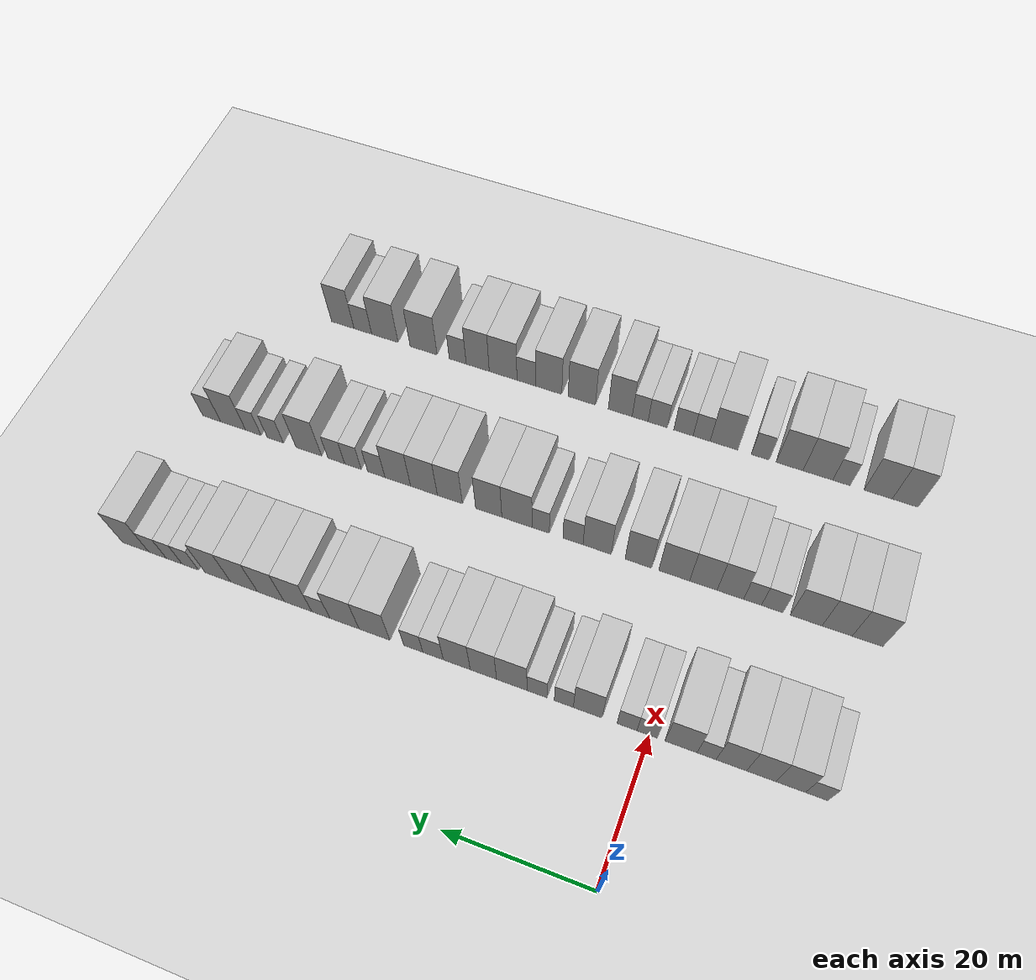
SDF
<sdf version="1.6">
 <world name="default">
  <include><name>ground_plane_1</name><uri>model://HANNAS_ground_plane</uri></include>
  <model name="building_91">
   <static>1</static>
   <pose>25.0000 -21.5674 0 0.000000 0.000000 0.000000</pose>
   <link name="link">
    <pose>0 0 3.00 0 0 0</pose>
    <collision name="collision"><geometry><box><size>10.0000 2.8144 6.0000</size></box></geometry></collision>
    <visual name="visual">
     <cast_shadows>0</cast_shadows>
     <geometry><box><size>10.0000 2.8144 6.0000</size></box></geometry>
     <material>
      <script>
       <uri>model://HANNAS_wall/materials/scripts</uri>
       <uri>model://HANNAS_wall/materials/textures</uri>
       <name>vrc/HANNAS_wall</name>
      </script>
     </material>
    </visual>
   </link>
  </model>
  <model name="building_92">
   <static>1</static>
   <pose>25.0000 -18.2721 0 0.000000 0.000000 0.000000</pose>
   <link name="link">
    <pose>0 0 4.50 0 0 0</pose>
    <collision name="collision"><geometry><box><size>10.0000 3.7761 9.0000</size></box></geometry></collision>
    <visual name="visual">
     <cast_shadows>0</cast_shadows>
     <geometry><box><size>10.0000 3.7761 9.0000</size></box></geometry>
     <material>
      <script>
       <uri>model://HANNAS_wall/materials/scripts</uri>
       <uri>model://HANNAS_wall/materials/textures</uri>
       <name>vrc/HANNAS_wall</name>
      </script>
     </material>
    </visual>
   </link>
  </model>
  <model name="building_93">
   <static>1</static>
   <pose>25.0000 -14.5217 0 0.000000 0.000000 0.000000</pose>
   <link name="link">
    <pose>0 0 4.50 0 0 0</pose>
    <collision name="collision"><geometry><box><size>10.0000 3.7248 9.0000</size></box></geometry></collision>
    <visual name="visual">
     <cast_shadows>0</cast_shadows>
     <geometry><box><size>10.0000 3.7248 9.0000</size></box></geometry>
     <material>
      <script>
       <uri>model://HANNAS_wall/materials/scripts</uri>
       <uri>model://HANNAS_wall/materials/textures</uri>
       <name>vrc/HANNAS_wall</name>
      </script>
     </material>
    </visual>
   </link>
  </model>
  <model name="building_94">
   <static>1</static>
   <pose>25.0000 -10.6902 0 0.000000 0.000000 0.000000</pose>
   <link name="link">
    <pose>0 0 4.50 0 0 0</pose>
    <collision name="collision"><geometry><box><size>10.0000 3.9383 9.0000</size></box></geometry></collision>
    <visual name="visual">
     <cast_shadows>0</cast_shadows>
     <geometry><box><size>10.0000 3.9383 9.0000</size></box></geometry>
     <material>
      <script>
       <uri>model://HANNAS_wall/materials/scripts</uri>
       <uri>model://HANNAS_wall/materials/textures</uri>
       <name>vrc/HANNAS_wall</name>
      </script>
     </material>
    </visual>
   </link>
  </model>
  <model name="building_95">
   <static>1</static>
   <pose>25.0000 -7.4806 0 0.000000 0.000000 0.000000</pose>
   <link name="link">
    <pose>0 0 3.00 0 0 0</pose>
    <collision name="collision"><geometry><box><size>10.0000 2.4808 6.0000</size></box></geometry></collision>
    <visual name="visual">
     <cast_shadows>0</cast_shadows>
     <geometry><box><size>10.0000 2.4808 6.0000</size></box></geometry>
     <material>
      <script>
       <uri>model://HANNAS_wall/materials/scripts</uri>
       <uri>model://HANNAS_wall/materials/textures</uri>
       <name>vrc/HANNAS_wall</name>
      </script>
     </material>
    </visual>
   </link>
  </model>
  <model name="building_96">
   <static>1</static>
   <pose>25.0000 -4.1381 0 0.000000 0.000000 0.000000</pose>
   <link name="link">
    <pose>0 0 4.50 0 0 0</pose>
    <collision name="collision"><geometry><box><size>10.0000 4.2041 9.0000</size></box></geometry></collision>
    <visual name="visual">
     <cast_shadows>0</cast_shadows>
     <geometry><box><size>10.0000 4.2041 9.0000</size></box></geometry>
     <material>
      <script>
       <uri>model://HANNAS_wall/materials/scripts</uri>
       <uri>model://HANNAS_wall/materials/textures</uri>
       <name>vrc/HANNAS_wall</name>
      </script>
     </material>
    </visual>
   </link>
  </model>
  <model name="building_97">
   <static>1</static>
   <pose>25.0000 0.3199 0 0.000000 0.000000 0.000000</pose>
   <link name="link">
    <pose>0 0 3.00 0 0 0</pose>
    <collision name="collision"><geometry><box><size>10.0000 2.7120 6.0000</size></box></geometry></collision>
    <visual name="visual">
     <cast_shadows>0</cast_shadows>
     <geometry><box><size>10.0000 2.7120 6.0000</size></box></geometry>
     <material>
      <script>
       <uri>model://HANNAS_wall/materials/scripts</uri>
       <uri>model://HANNAS_wall/materials/textures</uri>
       <name>vrc/HANNAS_wall</name>
      </script>
     </material>
    </visual>
   </link>
  </model>
  <model name="building_98">
   <static>1</static>
   <pose>25.0000 2.9998 0 0.000000 0.000000 0.000000</pose>
   <link name="link">
    <pose>0 0 3.00 0 0 0</pose>
    <collision name="collision"><geometry><box><size>10.0000 2.6476 6.0000</size></box></geometry></collision>
    <visual name="visual">
     <cast_shadows>0</cast_shadows>
     <geometry><box><size>10.0000 2.6476 6.0000</size></box></geometry>
     <material>
      <script>
       <uri>model://HANNAS_wall/materials/scripts</uri>
       <uri>model://HANNAS_wall/materials/textures</uri>
       <name>vrc/HANNAS_wall</name>
      </script>
     </material>
    </visual>
   </link>
  </model>
  <model name="building_99">
   <static>1</static>
   <pose>25.0000 8.2598 0 0.000000 0.000000 0.000000</pose>
   <link name="link">
    <pose>0 0 4.50 0 0 0</pose>
    <collision name="collision"><geometry><box><size>10.0000 3.8723 9.0000</size></box></geometry></collision>
    <visual name="visual">
     <cast_shadows>0</cast_shadows>
     <geometry><box><size>10.0000 3.8723 9.0000</size></box></geometry>
     <material>
      <script>
       <uri>model://HANNAS_wall/materials/scripts</uri>
       <uri>model://HANNAS_wall/materials/textures</uri>
       <name>vrc/HANNAS_wall</name>
      </script>
     </material>
    </visual>
   </link>
  </model>
  <model name="building_100">
   <static>1</static>
   <pose>25.0000 11.4898 0 0.000000 0.000000 0.000000</pose>
   <link name="link">
    <pose>0 0 3.00 0 0 0</pose>
    <collision name="collision"><geometry><box><size>10.0000 2.5877 6.0000</size></box></geometry></collision>
    <visual name="visual">
     <cast_shadows>0</cast_shadows>
     <geometry><box><size>10.0000 2.5877 6.0000</size></box></geometry>
     <material>
      <script>
       <uri>model://HANNAS_wall/materials/scripts</uri>
       <uri>model://HANNAS_wall/materials/textures</uri>
       <name>vrc/HANNAS_wall</name>
      </script>
     </material>
    </visual>
   </link>
  </model>
  <model name="building_101">
   <static>1</static>
   <pose>25.0000 15.1480 0 0.000000 0.000000 0.000000</pose>
   <link name="link">
    <pose>0 0 3.00 0 0 0</pose>
    <collision name="collision"><geometry><box><size>10.0000 2.7286 6.0000</size></box></geometry></collision>
    <visual name="visual">
     <cast_shadows>0</cast_shadows>
     <geometry><box><size>10.0000 2.7286 6.0000</size></box></geometry>
     <material>
      <script>
       <uri>model://HANNAS_wall/materials/scripts</uri>
       <uri>model://HANNAS_wall/materials/textures</uri>
       <name>vrc/HANNAS_wall</name>
      </script>
     </material>
    </visual>
   </link>
  </model>
  <model name="building_102">
   <static>1</static>
   <pose>25.0000 18.6237 0 0.000000 0.000000 0.000000</pose>
   <link name="link">
    <pose>0 0 4.50 0 0 0</pose>
    <collision name="collision"><geometry><box><size>10.0000 4.2228 9.0000</size></box></geometry></collision>
    <visual name="visual">
     <cast_shadows>0</cast_shadows>
     <geometry><box><size>10.0000 4.2228 9.0000</size></box></geometry>
     <material>
      <script>
       <uri>model://HANNAS_wall/materials/scripts</uri>
       <uri>model://HANNAS_wall/materials/textures</uri>
       <name>vrc/HANNAS_wall</name>
      </script>
     </material>
    </visual>
   </link>
  </model>
  <model name="building_103">
   <static>1</static>
   <pose>25.0000 22.5681 0 0.000000 0.000000 0.000000</pose>
   <link name="link">
    <pose>0 0 4.50 0 0 0</pose>
    <collision name="collision"><geometry><box><size>10.0000 3.6658 9.0000</size></box></geometry></collision>
    <visual name="visual">
     <cast_shadows>0</cast_shadows>
     <geometry><box><size>10.0000 3.6658 9.0000</size></box></geometry>
     <material>
      <script>
       <uri>model://HANNAS_wall/materials/scripts</uri>
       <uri>model://HANNAS_wall/materials/textures</uri>
       <name>vrc/HANNAS_wall</name>
      </script>
     </material>
    </visual>
   </link>
  </model>
  <model name="building_104">
   <static>1</static>
   <pose>25.0000 26.2870 0 0.000000 0.000000 0.000000</pose>
   <link name="link">
    <pose>0 0 4.50 0 0 0</pose>
    <collision name="collision"><geometry><box><size>10.0000 3.7720 9.0000</size></box></geometry></collision>
    <visual name="visual">
     <cast_shadows>0</cast_shadows>
     <geometry><box><size>10.0000 3.7720 9.0000</size></box></geometry>
     <material>
      <script>
       <uri>model://HANNAS_wall/materials/scripts</uri>
       <uri>model://HANNAS_wall/materials/textures</uri>
       <name>vrc/HANNAS_wall</name>
      </script>
     </material>
    </visual>
   </link>
  </model>
  <model name="building_105">
   <static>1</static>
   <pose>25.0000 29.6292 0 0.000000 0.000000 0.000000</pose>
   <link name="link">
    <pose>0 0 3.00 0 0 0</pose>
    <collision name="collision"><geometry><box><size>10.0000 2.9126 6.0000</size></box></geometry></collision>
    <visual name="visual">
     <cast_shadows>0</cast_shadows>
     <geometry><box><size>10.0000 2.9126 6.0000</size></box></geometry>
     <material>
      <script>
       <uri>model://HANNAS_wall/materials/scripts</uri>
       <uri>model://HANNAS_wall/materials/textures</uri>
       <name>vrc/HANNAS_wall</name>
      </script>
     </material>
    </visual>
   </link>
  </model>
  <model name="building_106">
   <static>1</static>
   <pose>25.0000 32.4454 0 0.000000 0.000000 0.000000</pose>
   <link name="link">
    <pose>0 0 3.00 0 0 0</pose>
    <collision name="collision"><geometry><box><size>10.0000 2.7198 6.0000</size></box></geometry></collision>
    <visual name="visual">
     <cast_shadows>0</cast_shadows>
     <geometry><box><size>10.0000 2.7198 6.0000</size></box></geometry>
     <material>
      <script>
       <uri>model://HANNAS_wall/materials/scripts</uri>
       <uri>model://HANNAS_wall/materials/textures</uri>
       <name>vrc/HANNAS_wall</name>
      </script>
     </material>
    </visual>
   </link>
  </model>
  <model name="building_107">
   <static>1</static>
   <pose>25.0000 38.0367 0 0.000000 0.000000 0.000000</pose>
   <link name="link">
    <pose>0 0 4.50 0 0 0</pose>
    <collision name="collision"><geometry><box><size>10.0000 4.4628 9.0000</size></box></geometry></collision>
    <visual name="visual">
     <cast_shadows>0</cast_shadows>
     <geometry><box><size>10.0000 4.4628 9.0000</size></box></geometry>
     <material>
      <script>
       <uri>model://HANNAS_wall/materials/scripts</uri>
       <uri>model://HANNAS_wall/materials/textures</uri>
       <name>vrc/HANNAS_wall</name>
      </script>
     </material>
    </visual>
   </link>
  </model>
  <model name="building_108">
   <static>1</static>
   <pose>25.0000 42.3980 0 0.000000 0.000000 0.000000</pose>
   <link name="link">
    <pose>0 0 4.50 0 0 0</pose>
    <collision name="collision"><geometry><box><size>10.0000 4.2598 9.0000</size></box></geometry></collision>
    <visual name="visual">
     <cast_shadows>0</cast_shadows>
     <geometry><box><size>10.0000 4.2598 9.0000</size></box></geometry>
     <material>
      <script>
       <uri>model://HANNAS_wall/materials/scripts</uri>
       <uri>model://HANNAS_wall/materials/textures</uri>
       <name>vrc/HANNAS_wall</name>
      </script>
     </material>
    </visual>
   </link>
  </model>
  <model name="building_109">
   <static>1</static>
   <pose>25.0000 45.8578 0 0.000000 0.000000 0.000000</pose>
   <link name="link">
    <pose>0 0 3.00 0 0 0</pose>
    <collision name="collision"><geometry><box><size>10.0000 2.6599 6.0000</size></box></geometry></collision>
    <visual name="visual">
     <cast_shadows>0</cast_shadows>
     <geometry><box><size>10.0000 2.6599 6.0000</size></box></geometry>
     <material>
      <script>
       <uri>model://HANNAS_wall/materials/scripts</uri>
       <uri>model://HANNAS_wall/materials/textures</uri>
       <name>vrc/HANNAS_wall</name>
      </script>
     </material>
    </visual>
   </link>
  </model>
  <model name="building_110">
   <static>1</static>
   <pose>25.0000 49.2243 0 0.000000 0.000000 0.000000</pose>
   <link name="link">
    <pose>0 0 4.50 0 0 0</pose>
    <collision name="collision"><geometry><box><size>10.0000 4.0730 9.0000</size></box></geometry></collision>
    <visual name="visual">
     <cast_shadows>0</cast_shadows>
     <geometry><box><size>10.0000 4.0730 9.0000</size></box></geometry>
     <material>
      <script>
       <uri>model://HANNAS_wall/materials/scripts</uri>
       <uri>model://HANNAS_wall/materials/textures</uri>
       <name>vrc/HANNAS_wall</name>
      </script>
     </material>
    </visual>
   </link>
  </model>
  <model name="building_111">
   <static>1</static>
   <pose>25.0000 53.2686 0 0.000000 0.000000 0.000000</pose>
   <link name="link">
    <pose>0 0 4.50 0 0 0</pose>
    <collision name="collision"><geometry><box><size>10.0000 4.0156 9.0000</size></box></geometry></collision>
    <visual name="visual">
     <cast_shadows>0</cast_shadows>
     <geometry><box><size>10.0000 4.0156 9.0000</size></box></geometry>
     <material>
      <script>
       <uri>model://HANNAS_wall/materials/scripts</uri>
       <uri>model://HANNAS_wall/materials/textures</uri>
       <name>vrc/HANNAS_wall</name>
      </script>
     </material>
    </visual>
   </link>
  </model>
  <model name="building_112">
   <static>1</static>
   <pose>25.0000 57.3039 0 0.000000 0.000000 0.000000</pose>
   <link name="link">
    <pose>0 0 4.50 0 0 0</pose>
    <collision name="collision"><geometry><box><size>10.0000 4.0552 9.0000</size></box></geometry></collision>
    <visual name="visual">
     <cast_shadows>0</cast_shadows>
     <geometry><box><size>10.0000 4.0552 9.0000</size></box></geometry>
     <material>
      <script>
       <uri>model://HANNAS_wall/materials/scripts</uri>
       <uri>model://HANNAS_wall/materials/textures</uri>
       <name>vrc/HANNAS_wall</name>
      </script>
     </material>
    </visual>
   </link>
  </model>
  <model name="building_113">
   <static>1</static>
   <pose>25.0000 61.2818 0 0.000000 0.000000 0.000000</pose>
   <link name="link">
    <pose>0 0 4.50 0 0 0</pose>
    <collision name="collision"><geometry><box><size>10.0000 3.9006 9.0000</size></box></geometry></collision>
    <visual name="visual">
     <cast_shadows>0</cast_shadows>
     <geometry><box><size>10.0000 3.9006 9.0000</size></box></geometry>
     <material>
      <script>
       <uri>model://HANNAS_wall/materials/scripts</uri>
       <uri>model://HANNAS_wall/materials/textures</uri>
       <name>vrc/HANNAS_wall</name>
      </script>
     </material>
    </visual>
   </link>
  </model>
  <model name="building_114">
   <static>1</static>
   <pose>25.0000 65.4964 0 0.000000 0.000000 0.000000</pose>
   <link name="link">
    <pose>0 0 3.00 0 0 0</pose>
    <collision name="collision"><geometry><box><size>10.0000 2.5286 6.0000</size></box></geometry></collision>
    <visual name="visual">
     <cast_shadows>0</cast_shadows>
     <geometry><box><size>10.0000 2.5286 6.0000</size></box></geometry>
     <material>
      <script>
       <uri>model://HANNAS_wall/materials/scripts</uri>
       <uri>model://HANNAS_wall/materials/textures</uri>
       <name>vrc/HANNAS_wall</name>
      </script>
     </material>
    </visual>
   </link>
  </model>
  <model name="building_115">
   <static>1</static>
   <pose>25.0000 67.9850 0 0.000000 0.000000 0.000000</pose>
   <link name="link">
    <pose>0 0 3.00 0 0 0</pose>
    <collision name="collision"><geometry><box><size>10.0000 2.4486 6.0000</size></box></geometry></collision>
    <visual name="visual">
     <cast_shadows>0</cast_shadows>
     <geometry><box><size>10.0000 2.4486 6.0000</size></box></geometry>
     <material>
      <script>
       <uri>model://HANNAS_wall/materials/scripts</uri>
       <uri>model://HANNAS_wall/materials/textures</uri>
       <name>vrc/HANNAS_wall</name>
      </script>
     </material>
    </visual>
   </link>
  </model>
  <model name="building_116">
   <static>1</static>
   <pose>25.0000 70.5760 0 0.000000 0.000000 0.000000</pose>
   <link name="link">
    <pose>0 0 3.00 0 0 0</pose>
    <collision name="collision"><geometry><box><size>10.0000 2.7333 6.0000</size></box></geometry></collision>
    <visual name="visual">
     <cast_shadows>0</cast_shadows>
     <geometry><box><size>10.0000 2.7333 6.0000</size></box></geometry>
     <material>
      <script>
       <uri>model://HANNAS_wall/materials/scripts</uri>
       <uri>model://HANNAS_wall/materials/textures</uri>
       <name>vrc/HANNAS_wall</name>
      </script>
     </material>
    </visual>
   </link>
  </model>
  <model name="building_117">
   <static>1</static>
   <pose>25.0000 73.9956 0 0.000000 0.000000 0.000000</pose>
   <link name="link">
    <pose>0 0 4.50 0 0 0</pose>
    <collision name="collision"><geometry><box><size>10.0000 4.1059 9.0000</size></box></geometry></collision>
    <visual name="visual">
     <cast_shadows>0</cast_shadows>
     <geometry><box><size>10.0000 4.1059 9.0000</size></box></geometry>
     <material>
      <script>
       <uri>model://HANNAS_wall/materials/scripts</uri>
       <uri>model://HANNAS_wall/materials/textures</uri>
       <name>vrc/HANNAS_wall</name>
      </script>
     </material>
    </visual>
   </link>
  </model>
  <model name="building_292">
   <static>1</static>
   <pose>47.0000 -22.9915 0 0.000000 0.000000 0.000000</pose>
   <link name="link">
    <pose>0 0 4.50 0 0 0</pose>
    <collision name="collision"><geometry><box><size>10.0000 4.1011 9.0000</size></box></geometry></collision>
    <visual name="visual">
     <cast_shadows>0</cast_shadows>
     <geometry><box><size>10.0000 4.1011 9.0000</size></box></geometry>
     <material>
      <script>
       <uri>model://HANNAS_wall/materials/scripts</uri>
       <uri>model://HANNAS_wall/materials/textures</uri>
       <name>vrc/HANNAS_wall</name>
      </script>
     </material>
    </visual>
   </link>
  </model>
  <model name="building_293">
   <static>1</static>
   <pose>47.0000 -18.9081 0 0.000000 0.000000 0.000000</pose>
   <link name="link">
    <pose>0 0 4.50 0 0 0</pose>
    <collision name="collision"><geometry><box><size>10.0000 4.0656 9.0000</size></box></geometry></collision>
    <visual name="visual">
     <cast_shadows>0</cast_shadows>
     <geometry><box><size>10.0000 4.0656 9.0000</size></box></geometry>
     <material>
      <script>
       <uri>model://HANNAS_wall/materials/scripts</uri>
       <uri>model://HANNAS_wall/materials/textures</uri>
       <name>vrc/HANNAS_wall</name>
      </script>
     </material>
    </visual>
   </link>
  </model>
  <model name="building_294">
   <static>1</static>
   <pose>47.0000 -14.7144 0 0.000000 0.000000 0.000000</pose>
   <link name="link">
    <pose>0 0 4.50 0 0 0</pose>
    <collision name="collision"><geometry><box><size>10.0000 4.3219 9.0000</size></box></geometry></collision>
    <visual name="visual">
     <cast_shadows>0</cast_shadows>
     <geometry><box><size>10.0000 4.3219 9.0000</size></box></geometry>
     <material>
      <script>
       <uri>model://HANNAS_wall/materials/scripts</uri>
       <uri>model://HANNAS_wall/materials/textures</uri>
       <name>vrc/HANNAS_wall</name>
      </script>
     </material>
    </visual>
   </link>
  </model>
  <model name="building_295">
   <static>1</static>
   <pose>47.0000 -10.0783 0 0.000000 0.000000 0.000000</pose>
   <link name="link">
    <pose>0 0 3.00 0 0 0</pose>
    <collision name="collision"><geometry><box><size>10.0000 2.9503 6.0000</size></box></geometry></collision>
    <visual name="visual">
     <cast_shadows>0</cast_shadows>
     <geometry><box><size>10.0000 2.9503 6.0000</size></box></geometry>
     <material>
      <script>
       <uri>model://HANNAS_wall/materials/scripts</uri>
       <uri>model://HANNAS_wall/materials/textures</uri>
       <name>vrc/HANNAS_wall</name>
      </script>
     </material>
    </visual>
   </link>
  </model>
  <model name="building_296">
   <static>1</static>
   <pose>47.0000 -7.3550 0 0.000000 0.000000 0.000000</pose>
   <link name="link">
    <pose>0 0 3.00 0 0 0</pose>
    <collision name="collision"><geometry><box><size>10.0000 2.4963 6.0000</size></box></geometry></collision>
    <visual name="visual">
     <cast_shadows>0</cast_shadows>
     <geometry><box><size>10.0000 2.4963 6.0000</size></box></geometry>
     <material>
      <script>
       <uri>model://HANNAS_wall/materials/scripts</uri>
       <uri>model://HANNAS_wall/materials/textures</uri>
       <name>vrc/HANNAS_wall</name>
      </script>
     </material>
    </visual>
   </link>
  </model>
  <model name="building_297">
   <static>1</static>
   <pose>47.0000 -4.2709 0 0.000000 0.000000 0.000000</pose>
   <link name="link">
    <pose>0 0 4.50 0 0 0</pose>
    <collision name="collision"><geometry><box><size>10.0000 3.6718 9.0000</size></box></geometry></collision>
    <visual name="visual">
     <cast_shadows>0</cast_shadows>
     <geometry><box><size>10.0000 3.6718 9.0000</size></box></geometry>
     <material>
      <script>
       <uri>model://HANNAS_wall/materials/scripts</uri>
       <uri>model://HANNAS_wall/materials/textures</uri>
       <name>vrc/HANNAS_wall</name>
      </script>
     </material>
    </visual>
   </link>
  </model>
  <model name="building_298">
   <static>1</static>
   <pose>47.0000 -0.5093 0 0.000000 0.000000 0.000000</pose>
   <link name="link">
    <pose>0 0 4.50 0 0 0</pose>
    <collision name="collision"><geometry><box><size>10.0000 3.8514 9.0000</size></box></geometry></collision>
    <visual name="visual">
     <cast_shadows>0</cast_shadows>
     <geometry><box><size>10.0000 3.8514 9.0000</size></box></geometry>
     <material>
      <script>
       <uri>model://HANNAS_wall/materials/scripts</uri>
       <uri>model://HANNAS_wall/materials/textures</uri>
       <name>vrc/HANNAS_wall</name>
      </script>
     </material>
    </visual>
   </link>
  </model>
  <model name="building_299">
   <static>1</static>
   <pose>47.0000 3.6028 0 0.000000 0.000000 0.000000</pose>
   <link name="link">
    <pose>0 0 4.50 0 0 0</pose>
    <collision name="collision"><geometry><box><size>10.0000 4.3728 9.0000</size></box></geometry></collision>
    <visual name="visual">
     <cast_shadows>0</cast_shadows>
     <geometry><box><size>10.0000 4.3728 9.0000</size></box></geometry>
     <material>
      <script>
       <uri>model://HANNAS_wall/materials/scripts</uri>
       <uri>model://HANNAS_wall/materials/textures</uri>
       <name>vrc/HANNAS_wall</name>
      </script>
     </material>
    </visual>
   </link>
  </model>
  <model name="building_300">
   <static>1</static>
   <pose>47.0000 8.6964 0 0.000000 0.000000 0.000000</pose>
   <link name="link">
    <pose>0 0 4.50 0 0 0</pose>
    <collision name="collision"><geometry><box><size>10.0000 3.8142 9.0000</size></box></geometry></collision>
    <visual name="visual">
     <cast_shadows>0</cast_shadows>
     <geometry><box><size>10.0000 3.8142 9.0000</size></box></geometry>
     <material>
      <script>
       <uri>model://HANNAS_wall/materials/scripts</uri>
       <uri>model://HANNAS_wall/materials/textures</uri>
       <name>vrc/HANNAS_wall</name>
      </script>
     </material>
    </visual>
   </link>
  </model>
  <model name="building_301">
   <static>1</static>
   <pose>47.0000 14.6501 0 0.000000 0.000000 0.000000</pose>
   <link name="link">
    <pose>0 0 4.50 0 0 0</pose>
    <collision name="collision"><geometry><box><size>10.0000 4.0932 9.0000</size></box></geometry></collision>
    <visual name="visual">
     <cast_shadows>0</cast_shadows>
     <geometry><box><size>10.0000 4.0932 9.0000</size></box></geometry>
     <material>
      <script>
       <uri>model://HANNAS_wall/materials/scripts</uri>
       <uri>model://HANNAS_wall/materials/textures</uri>
       <name>vrc/HANNAS_wall</name>
      </script>
     </material>
    </visual>
   </link>
  </model>
  <model name="building_302">
   <static>1</static>
   <pose>47.0000 18.1622 0 0.000000 0.000000 0.000000</pose>
   <link name="link">
    <pose>0 0 3.00 0 0 0</pose>
    <collision name="collision"><geometry><box><size>10.0000 2.9310 6.0000</size></box></geometry></collision>
    <visual name="visual">
     <cast_shadows>0</cast_shadows>
     <geometry><box><size>10.0000 2.9310 6.0000</size></box></geometry>
     <material>
      <script>
       <uri>model://HANNAS_wall/materials/scripts</uri>
       <uri>model://HANNAS_wall/materials/textures</uri>
       <name>vrc/HANNAS_wall</name>
      </script>
     </material>
    </visual>
   </link>
  </model>
  <model name="building_303">
   <static>1</static>
   <pose>47.0000 22.9031 0 0.000000 0.000000 0.000000</pose>
   <link name="link">
    <pose>0 0 3.00 0 0 0</pose>
    <collision name="collision"><geometry><box><size>10.0000 2.5507 6.0000</size></box></geometry></collision>
    <visual name="visual">
     <cast_shadows>0</cast_shadows>
     <geometry><box><size>10.0000 2.5507 6.0000</size></box></geometry>
     <material>
      <script>
       <uri>model://HANNAS_wall/materials/scripts</uri>
       <uri>model://HANNAS_wall/materials/textures</uri>
       <name>vrc/HANNAS_wall</name>
      </script>
     </material>
    </visual>
   </link>
  </model>
  <model name="building_304">
   <static>1</static>
   <pose>47.0000 26.4235 0 0.000000 0.000000 0.000000</pose>
   <link name="link">
    <pose>0 0 4.50 0 0 0</pose>
    <collision name="collision"><geometry><box><size>10.0000 4.4901 9.0000</size></box></geometry></collision>
    <visual name="visual">
     <cast_shadows>0</cast_shadows>
     <geometry><box><size>10.0000 4.4901 9.0000</size></box></geometry>
     <material>
      <script>
       <uri>model://HANNAS_wall/materials/scripts</uri>
       <uri>model://HANNAS_wall/materials/textures</uri>
       <name>vrc/HANNAS_wall</name>
      </script>
     </material>
    </visual>
   </link>
  </model>
  <model name="building_305">
   <static>1</static>
   <pose>47.0000 30.6347 0 0.000000 0.000000 0.000000</pose>
   <link name="link">
    <pose>0 0 4.50 0 0 0</pose>
    <collision name="collision"><geometry><box><size>10.0000 3.9322 9.0000</size></box></geometry></collision>
    <visual name="visual">
     <cast_shadows>0</cast_shadows>
     <geometry><box><size>10.0000 3.9322 9.0000</size></box></geometry>
     <material>
      <script>
       <uri>model://HANNAS_wall/materials/scripts</uri>
       <uri>model://HANNAS_wall/materials/textures</uri>
       <name>vrc/HANNAS_wall</name>
      </script>
     </material>
    </visual>
   </link>
  </model>
  <model name="building_306">
   <static>1</static>
   <pose>47.0000 36.5067 0 0.000000 0.000000 0.000000</pose>
   <link name="link">
    <pose>0 0 4.50 0 0 0</pose>
    <collision name="collision"><geometry><box><size>10.0000 3.8119 9.0000</size></box></geometry></collision>
    <visual name="visual">
     <cast_shadows>0</cast_shadows>
     <geometry><box><size>10.0000 3.8119 9.0000</size></box></geometry>
     <material>
      <script>
       <uri>model://HANNAS_wall/materials/scripts</uri>
       <uri>model://HANNAS_wall/materials/textures</uri>
       <name>vrc/HANNAS_wall</name>
      </script>
     </material>
    </visual>
   </link>
  </model>
  <model name="building_307">
   <static>1</static>
   <pose>47.0000 40.4643 0 0.000000 0.000000 0.000000</pose>
   <link name="link">
    <pose>0 0 4.50 0 0 0</pose>
    <collision name="collision"><geometry><box><size>10.0000 4.1032 9.0000</size></box></geometry></collision>
    <visual name="visual">
     <cast_shadows>0</cast_shadows>
     <geometry><box><size>10.0000 4.1032 9.0000</size></box></geometry>
     <material>
      <script>
       <uri>model://HANNAS_wall/materials/scripts</uri>
       <uri>model://HANNAS_wall/materials/textures</uri>
       <name>vrc/HANNAS_wall</name>
      </script>
     </material>
    </visual>
   </link>
  </model>
  <model name="building_308">
   <static>1</static>
   <pose>47.0000 44.5032 0 0.000000 0.000000 0.000000</pose>
   <link name="link">
    <pose>0 0 4.50 0 0 0</pose>
    <collision name="collision"><geometry><box><size>10.0000 3.9745 9.0000</size></box></geometry></collision>
    <visual name="visual">
     <cast_shadows>0</cast_shadows>
     <geometry><box><size>10.0000 3.9745 9.0000</size></box></geometry>
     <material>
      <script>
       <uri>model://HANNAS_wall/materials/scripts</uri>
       <uri>model://HANNAS_wall/materials/textures</uri>
       <name>vrc/HANNAS_wall</name>
      </script>
     </material>
    </visual>
   </link>
  </model>
  <model name="building_309">
   <static>1</static>
   <pose>47.0000 47.8372 0 0.000000 0.000000 0.000000</pose>
   <link name="link">
    <pose>0 0 3.00 0 0 0</pose>
    <collision name="collision"><geometry><box><size>10.0000 2.6935 6.0000</size></box></geometry></collision>
    <visual name="visual">
     <cast_shadows>0</cast_shadows>
     <geometry><box><size>10.0000 2.6935 6.0000</size></box></geometry>
     <material>
      <script>
       <uri>model://HANNAS_wall/materials/scripts</uri>
       <uri>model://HANNAS_wall/materials/textures</uri>
       <name>vrc/HANNAS_wall</name>
      </script>
     </material>
    </visual>
   </link>
  </model>
  <model name="building_310">
   <static>1</static>
   <pose>47.0000 51.4828 0 0.000000 0.000000 0.000000</pose>
   <link name="link">
    <pose>0 0 3.00 0 0 0</pose>
    <collision name="collision"><geometry><box><size>10.0000 2.5977 6.0000</size></box></geometry></collision>
    <visual name="visual">
     <cast_shadows>0</cast_shadows>
     <geometry><box><size>10.0000 2.5977 6.0000</size></box></geometry>
     <material>
      <script>
       <uri>model://HANNAS_wall/materials/scripts</uri>
       <uri>model://HANNAS_wall/materials/textures</uri>
       <name>vrc/HANNAS_wall</name>
      </script>
     </material>
    </visual>
   </link>
  </model>
  <model name="building_311">
   <static>1</static>
   <pose>47.0000 54.1080 0 0.000000 0.000000 0.000000</pose>
   <link name="link">
    <pose>0 0 3.00 0 0 0</pose>
    <collision name="collision"><geometry><box><size>10.0000 2.6528 6.0000</size></box></geometry></collision>
    <visual name="visual">
     <cast_shadows>0</cast_shadows>
     <geometry><box><size>10.0000 2.6528 6.0000</size></box></geometry>
     <material>
      <script>
       <uri>model://HANNAS_wall/materials/scripts</uri>
       <uri>model://HANNAS_wall/materials/textures</uri>
       <name>vrc/HANNAS_wall</name>
      </script>
     </material>
    </visual>
   </link>
  </model>
  <model name="building_312">
   <static>1</static>
   <pose>47.0000 58.4854 0 0.000000 0.000000 0.000000</pose>
   <link name="link">
    <pose>0 0 4.50 0 0 0</pose>
    <collision name="collision"><geometry><box><size>10.0000 4.1020 9.0000</size></box></geometry></collision>
    <visual name="visual">
     <cast_shadows>0</cast_shadows>
     <geometry><box><size>10.0000 4.1020 9.0000</size></box></geometry>
     <material>
      <script>
       <uri>model://HANNAS_wall/materials/scripts</uri>
       <uri>model://HANNAS_wall/materials/textures</uri>
       <name>vrc/HANNAS_wall</name>
      </script>
     </material>
    </visual>
   </link>
  </model>
  <model name="building_313">
   <static>1</static>
   <pose>47.0000 63.8327 0 0.000000 0.000000 0.000000</pose>
   <link name="link">
    <pose>0 0 3.00 0 0 0</pose>
    <collision name="collision"><geometry><box><size>10.0000 2.5927 6.0000</size></box></geometry></collision>
    <visual name="visual">
     <cast_shadows>0</cast_shadows>
     <geometry><box><size>10.0000 2.5927 6.0000</size></box></geometry>
     <material>
      <script>
       <uri>model://HANNAS_wall/materials/scripts</uri>
       <uri>model://HANNAS_wall/materials/textures</uri>
       <name>vrc/HANNAS_wall</name>
      </script>
     </material>
    </visual>
   </link>
  </model>
  <model name="building_314">
   <static>1</static>
   <pose>47.0000 67.3872 0 0.000000 0.000000 0.000000</pose>
   <link name="link">
    <pose>0 0 3.00 0 0 0</pose>
    <collision name="collision"><geometry><box><size>10.0000 2.5163 6.0000</size></box></geometry></collision>
    <visual name="visual">
     <cast_shadows>0</cast_shadows>
     <geometry><box><size>10.0000 2.5163 6.0000</size></box></geometry>
     <material>
      <script>
       <uri>model://HANNAS_wall/materials/scripts</uri>
       <uri>model://HANNAS_wall/materials/textures</uri>
       <name>vrc/HANNAS_wall</name>
      </script>
     </material>
    </visual>
   </link>
  </model>
  <model name="building_315">
   <static>1</static>
   <pose>47.0000 70.6732 0 0.000000 0.000000 0.000000</pose>
   <link name="link">
    <pose>0 0 4.50 0 0 0</pose>
    <collision name="collision"><geometry><box><size>10.0000 4.0558 9.0000</size></box></geometry></collision>
    <visual name="visual">
     <cast_shadows>0</cast_shadows>
     <geometry><box><size>10.0000 4.0558 9.0000</size></box></geometry>
     <material>
      <script>
       <uri>model://HANNAS_wall/materials/scripts</uri>
       <uri>model://HANNAS_wall/materials/textures</uri>
       <name>vrc/HANNAS_wall</name>
      </script>
     </material>
    </visual>
   </link>
  </model>
  <model name="building_316">
   <static>1</static>
   <pose>47.0000 74.1788 0 0.000000 0.000000 0.000000</pose>
   <link name="link">
    <pose>0 0 3.00 0 0 0</pose>
    <collision name="collision"><geometry><box><size>10.0000 2.9552 6.0000</size></box></geometry></collision>
    <visual name="visual">
     <cast_shadows>0</cast_shadows>
     <geometry><box><size>10.0000 2.9552 6.0000</size></box></geometry>
     <material>
      <script>
       <uri>model://HANNAS_wall/materials/scripts</uri>
       <uri>model://HANNAS_wall/materials/textures</uri>
       <name>vrc/HANNAS_wall</name>
      </script>
     </material>
    </visual>
   </link>
  </model>
  <model name="building_482">
   <static>1</static>
   <pose>69.0000 -23.4337 0 0.000000 0.000000 0.000000</pose>
   <link name="link">
    <pose>0 0 4.50 0 0 0</pose>
    <collision name="collision"><geometry><box><size>10.0000 3.6614 9.0000</size></box></geometry></collision>
    <visual name="visual">
     <cast_shadows>0</cast_shadows>
     <geometry><box><size>10.0000 3.6614 9.0000</size></box></geometry>
     <material>
      <script>
       <uri>model://HANNAS_wall/materials/scripts</uri>
       <uri>model://HANNAS_wall/materials/textures</uri>
       <name>vrc/HANNAS_wall</name>
      </script>
     </material>
    </visual>
   </link>
  </model>
  <model name="building_483">
   <static>1</static>
   <pose>69.0000 -19.5881 0 0.000000 0.000000 0.000000</pose>
   <link name="link">
    <pose>0 0 4.50 0 0 0</pose>
    <collision name="collision"><geometry><box><size>10.0000 4.0299 9.0000</size></box></geometry></collision>
    <visual name="visual">
     <cast_shadows>0</cast_shadows>
     <geometry><box><size>10.0000 4.0299 9.0000</size></box></geometry>
     <material>
      <script>
       <uri>model://HANNAS_wall/materials/scripts</uri>
       <uri>model://HANNAS_wall/materials/textures</uri>
       <name>vrc/HANNAS_wall</name>
      </script>
     </material>
    </visual>
   </link>
  </model>
  <model name="building_484">
   <static>1</static>
   <pose>69.0000 -14.3125 0 0.000000 0.000000 0.000000</pose>
   <link name="link">
    <pose>0 0 3.00 0 0 0</pose>
    <collision name="collision"><geometry><box><size>10.0000 2.5212 6.0000</size></box></geometry></collision>
    <visual name="visual">
     <cast_shadows>0</cast_shadows>
     <geometry><box><size>10.0000 2.5212 6.0000</size></box></geometry>
     <material>
      <script>
       <uri>model://HANNAS_wall/materials/scripts</uri>
       <uri>model://HANNAS_wall/materials/textures</uri>
       <name>vrc/HANNAS_wall</name>
      </script>
     </material>
    </visual>
   </link>
  </model>
  <model name="building_485">
   <static>1</static>
   <pose>69.0000 -10.8890 0 0.000000 0.000000 0.000000</pose>
   <link name="link">
    <pose>0 0 4.50 0 0 0</pose>
    <collision name="collision"><geometry><box><size>10.0000 4.3257 9.0000</size></box></geometry></collision>
    <visual name="visual">
     <cast_shadows>0</cast_shadows>
     <geometry><box><size>10.0000 4.3257 9.0000</size></box></geometry>
     <material>
      <script>
       <uri>model://HANNAS_wall/materials/scripts</uri>
       <uri>model://HANNAS_wall/materials/textures</uri>
       <name>vrc/HANNAS_wall</name>
      </script>
     </material>
    </visual>
   </link>
  </model>
  <model name="building_486">
   <static>1</static>
   <pose>69.0000 -6.7613 0 0.000000 0.000000 0.000000</pose>
   <link name="link">
    <pose>0 0 4.50 0 0 0</pose>
    <collision name="collision"><geometry><box><size>10.0000 3.9297 9.0000</size></box></geometry></collision>
    <visual name="visual">
     <cast_shadows>0</cast_shadows>
     <geometry><box><size>10.0000 3.9297 9.0000</size></box></geometry>
     <material>
      <script>
       <uri>model://HANNAS_wall/materials/scripts</uri>
       <uri>model://HANNAS_wall/materials/textures</uri>
       <name>vrc/HANNAS_wall</name>
      </script>
     </material>
    </visual>
   </link>
  </model>
  <model name="building_487">
   <static>1</static>
   <pose>69.0000 -2.4625 0 0.000000 0.000000 0.000000</pose>
   <link name="link">
    <pose>0 0 3.00 0 0 0</pose>
    <collision name="collision"><geometry><box><size>10.0000 2.6679 6.0000</size></box></geometry></collision>
    <visual name="visual">
     <cast_shadows>0</cast_shadows>
     <geometry><box><size>10.0000 2.6679 6.0000</size></box></geometry>
     <material>
      <script>
       <uri>model://HANNAS_wall/materials/scripts</uri>
       <uri>model://HANNAS_wall/materials/textures</uri>
       <name>vrc/HANNAS_wall</name>
      </script>
     </material>
    </visual>
   </link>
  </model>
  <model name="building_488">
   <static>1</static>
   <pose>69.0000 2.9385 0 0.000000 0.000000 0.000000</pose>
   <link name="link">
    <pose>0 0 4.50 0 0 0</pose>
    <collision name="collision"><geometry><box><size>10.0000 4.1340 9.0000</size></box></geometry></collision>
    <visual name="visual">
     <cast_shadows>0</cast_shadows>
     <geometry><box><size>10.0000 4.1340 9.0000</size></box></geometry>
     <material>
      <script>
       <uri>model://HANNAS_wall/materials/scripts</uri>
       <uri>model://HANNAS_wall/materials/textures</uri>
       <name>vrc/HANNAS_wall</name>
      </script>
     </material>
    </visual>
   </link>
  </model>
  <model name="building_489">
   <static>1</static>
   <pose>69.0000 6.2852 0 0.000000 0.000000 0.000000</pose>
   <link name="link">
    <pose>0 0 3.00 0 0 0</pose>
    <collision name="collision"><geometry><box><size>10.0000 2.5595 6.0000</size></box></geometry></collision>
    <visual name="visual">
     <cast_shadows>0</cast_shadows>
     <geometry><box><size>10.0000 2.5595 6.0000</size></box></geometry>
     <material>
      <script>
       <uri>model://HANNAS_wall/materials/scripts</uri>
       <uri>model://HANNAS_wall/materials/textures</uri>
       <name>vrc/HANNAS_wall</name>
      </script>
     </material>
    </visual>
   </link>
  </model>
  <model name="building_490">
   <static>1</static>
   <pose>69.0000 9.0339 0 0.000000 0.000000 0.000000</pose>
   <link name="link">
    <pose>0 0 3.00 0 0 0</pose>
    <collision name="collision"><geometry><box><size>10.0000 2.9380 6.0000</size></box></geometry></collision>
    <visual name="visual">
     <cast_shadows>0</cast_shadows>
     <geometry><box><size>10.0000 2.9380 6.0000</size></box></geometry>
     <material>
      <script>
       <uri>model://HANNAS_wall/materials/scripts</uri>
       <uri>model://HANNAS_wall/materials/textures</uri>
       <name>vrc/HANNAS_wall</name>
      </script>
     </material>
    </visual>
   </link>
  </model>
  <model name="building_491">
   <static>1</static>
   <pose>69.0000 12.9622 0 0.000000 0.000000 0.000000</pose>
   <link name="link">
    <pose>0 0 3.00 0 0 0</pose>
    <collision name="collision"><geometry><box><size>10.0000 2.9185 6.0000</size></box></geometry></collision>
    <visual name="visual">
     <cast_shadows>0</cast_shadows>
     <geometry><box><size>10.0000 2.9185 6.0000</size></box></geometry>
     <material>
      <script>
       <uri>model://HANNAS_wall/materials/scripts</uri>
       <uri>model://HANNAS_wall/materials/textures</uri>
       <name>vrc/HANNAS_wall</name>
      </script>
     </material>
    </visual>
   </link>
  </model>
  <model name="building_492">
   <static>1</static>
   <pose>69.0000 15.6363 0 0.000000 0.000000 0.000000</pose>
   <link name="link">
    <pose>0 0 3.00 0 0 0</pose>
    <collision name="collision"><geometry><box><size>10.0000 2.4297 6.0000</size></box></geometry></collision>
    <visual name="visual">
     <cast_shadows>0</cast_shadows>
     <geometry><box><size>10.0000 2.4297 6.0000</size></box></geometry>
     <material>
      <script>
       <uri>model://HANNAS_wall/materials/scripts</uri>
       <uri>model://HANNAS_wall/materials/textures</uri>
       <name>vrc/HANNAS_wall</name>
      </script>
     </material>
    </visual>
   </link>
  </model>
  <model name="building_493">
   <static>1</static>
   <pose>69.0000 18.7018 0 0.000000 0.000000 0.000000</pose>
   <link name="link">
    <pose>0 0 4.50 0 0 0</pose>
    <collision name="collision"><geometry><box><size>10.0000 3.7015 9.0000</size></box></geometry></collision>
    <visual name="visual">
     <cast_shadows>0</cast_shadows>
     <geometry><box><size>10.0000 3.7015 9.0000</size></box></geometry>
     <material>
      <script>
       <uri>model://HANNAS_wall/materials/scripts</uri>
       <uri>model://HANNAS_wall/materials/textures</uri>
       <name>vrc/HANNAS_wall</name>
      </script>
     </material>
    </visual>
   </link>
  </model>
  <model name="building_494">
   <static>1</static>
   <pose>69.0000 24.6884 0 0.000000 0.000000 0.000000</pose>
   <link name="link">
    <pose>0 0 4.50 0 0 0</pose>
    <collision name="collision"><geometry><box><size>10.0000 4.2717 9.0000</size></box></geometry></collision>
    <visual name="visual">
     <cast_shadows>0</cast_shadows>
     <geometry><box><size>10.0000 4.2717 9.0000</size></box></geometry>
     <material>
      <script>
       <uri>model://HANNAS_wall/materials/scripts</uri>
       <uri>model://HANNAS_wall/materials/textures</uri>
       <name>vrc/HANNAS_wall</name>
      </script>
     </material>
    </visual>
   </link>
  </model>
  <model name="building_495">
   <static>1</static>
   <pose>69.0000 29.9168 0 0.000000 0.000000 0.000000</pose>
   <link name="link">
    <pose>0 0 4.50 0 0 0</pose>
    <collision name="collision"><geometry><box><size>10.0000 4.1851 9.0000</size></box></geometry></collision>
    <visual name="visual">
     <cast_shadows>0</cast_shadows>
     <geometry><box><size>10.0000 4.1851 9.0000</size></box></geometry>
     <material>
      <script>
       <uri>model://HANNAS_wall/materials/scripts</uri>
       <uri>model://HANNAS_wall/materials/textures</uri>
       <name>vrc/HANNAS_wall</name>
      </script>
     </material>
    </visual>
   </link>
  </model>
  <model name="building_496">
   <static>1</static>
   <pose>69.0000 33.4621 0 0.000000 0.000000 0.000000</pose>
   <link name="link">
    <pose>0 0 3.00 0 0 0</pose>
    <collision name="collision"><geometry><box><size>10.0000 2.9055 6.0000</size></box></geometry></collision>
    <visual name="visual">
     <cast_shadows>0</cast_shadows>
     <geometry><box><size>10.0000 2.9055 6.0000</size></box></geometry>
     <material>
      <script>
       <uri>model://HANNAS_wall/materials/scripts</uri>
       <uri>model://HANNAS_wall/materials/textures</uri>
       <name>vrc/HANNAS_wall</name>
      </script>
     </material>
    </visual>
   </link>
  </model>
  <model name="building_497">
   <static>1</static>
   <pose>69.0000 37.1411 0 0.000000 0.000000 0.000000</pose>
   <link name="link">
    <pose>0 0 4.50 0 0 0</pose>
    <collision name="collision"><geometry><box><size>10.0000 4.4525 9.0000</size></box></geometry></collision>
    <visual name="visual">
     <cast_shadows>0</cast_shadows>
     <geometry><box><size>10.0000 4.4525 9.0000</size></box></geometry>
     <material>
      <script>
       <uri>model://HANNAS_wall/materials/scripts</uri>
       <uri>model://HANNAS_wall/materials/textures</uri>
       <name>vrc/HANNAS_wall</name>
      </script>
     </material>
    </visual>
   </link>
  </model>
  <model name="building_498">
   <static>1</static>
   <pose>69.0000 41.2312 0 0.000000 0.000000 0.000000</pose>
   <link name="link">
    <pose>0 0 4.50 0 0 0</pose>
    <collision name="collision"><geometry><box><size>10.0000 3.7276 9.0000</size></box></geometry></collision>
    <visual name="visual">
     <cast_shadows>0</cast_shadows>
     <geometry><box><size>10.0000 3.7276 9.0000</size></box></geometry>
     <material>
      <script>
       <uri>model://HANNAS_wall/materials/scripts</uri>
       <uri>model://HANNAS_wall/materials/textures</uri>
       <name>vrc/HANNAS_wall</name>
      </script>
     </material>
    </visual>
   </link>
  </model>
  <model name="building_499">
   <static>1</static>
   <pose>69.0000 44.4635 0 0.000000 0.000000 0.000000</pose>
   <link name="link">
    <pose>0 0 3.00 0 0 0</pose>
    <collision name="collision"><geometry><box><size>10.0000 2.7371 6.0000</size></box></geometry></collision>
    <visual name="visual">
     <cast_shadows>0</cast_shadows>
     <geometry><box><size>10.0000 2.7371 6.0000</size></box></geometry>
     <material>
      <script>
       <uri>model://HANNAS_wall/materials/scripts</uri>
       <uri>model://HANNAS_wall/materials/textures</uri>
       <name>vrc/HANNAS_wall</name>
      </script>
     </material>
    </visual>
   </link>
  </model>
  <model name="building_500">
   <static>1</static>
   <pose>69.0000 50.0578 0 0.000000 0.000000 0.000000</pose>
   <link name="link">
    <pose>0 0 4.50 0 0 0</pose>
    <collision name="collision"><geometry><box><size>10.0000 4.4516 9.0000</size></box></geometry></collision>
    <visual name="visual">
     <cast_shadows>0</cast_shadows>
     <geometry><box><size>10.0000 4.4516 9.0000</size></box></geometry>
     <material>
      <script>
       <uri>model://HANNAS_wall/materials/scripts</uri>
       <uri>model://HANNAS_wall/materials/textures</uri>
       <name>vrc/HANNAS_wall</name>
      </script>
     </material>
    </visual>
   </link>
  </model>
  <model name="building_501">
   <static>1</static>
   <pose>69.0000 56.4732 0 0.000000 0.000000 0.000000</pose>
   <link name="link">
    <pose>0 0 4.50 0 0 0</pose>
    <collision name="collision"><geometry><box><size>10.0000 4.3791 9.0000</size></box></geometry></collision>
    <visual name="visual">
     <cast_shadows>0</cast_shadows>
     <geometry><box><size>10.0000 4.3791 9.0000</size></box></geometry>
     <material>
      <script>
       <uri>model://HANNAS_wall/materials/scripts</uri>
       <uri>model://HANNAS_wall/materials/textures</uri>
       <name>vrc/HANNAS_wall</name>
      </script>
     </material>
    </visual>
   </link>
  </model>
  <model name="building_502">
   <static>1</static>
   <pose>69.0000 60.1477 0 0.000000 0.000000 0.000000</pose>
   <link name="link">
    <pose>0 0 3.00 0 0 0</pose>
    <collision name="collision"><geometry><box><size>10.0000 2.9701 6.0000</size></box></geometry></collision>
    <visual name="visual">
     <cast_shadows>0</cast_shadows>
     <geometry><box><size>10.0000 2.9701 6.0000</size></box></geometry>
     <material>
      <script>
       <uri>model://HANNAS_wall/materials/scripts</uri>
       <uri>model://HANNAS_wall/materials/textures</uri>
       <name>vrc/HANNAS_wall</name>
      </script>
     </material>
    </visual>
   </link>
  </model>
  <model name="building_503">
   <static>1</static>
   <pose>69.0000 63.5248 0 0.000000 0.000000 0.000000</pose>
   <link name="link">
    <pose>0 0 4.50 0 0 0</pose>
    <collision name="collision"><geometry><box><size>10.0000 3.7840 9.0000</size></box></geometry></collision>
    <visual name="visual">
     <cast_shadows>0</cast_shadows>
     <geometry><box><size>10.0000 3.7840 9.0000</size></box></geometry>
     <material>
      <script>
       <uri>model://HANNAS_wall/materials/scripts</uri>
       <uri>model://HANNAS_wall/materials/textures</uri>
       <name>vrc/HANNAS_wall</name>
      </script>
     </material>
    </visual>
   </link>
  </model>
 </world>
</sdf>
